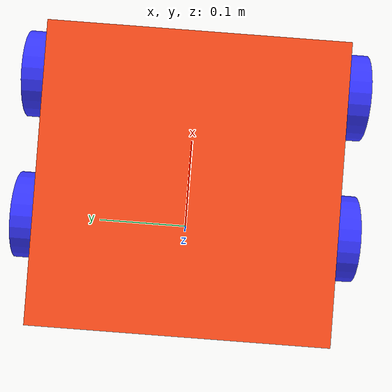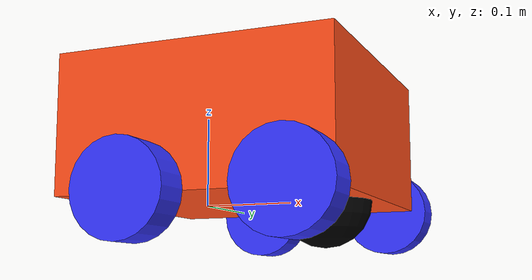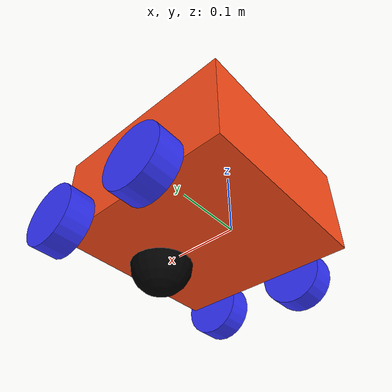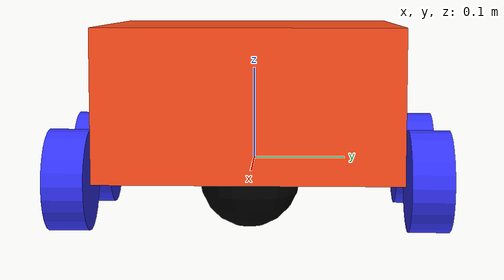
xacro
<?xml version="1.0"?>
<robot xmlns:xacro="http://www.ros.org/wiki/xacro">

  <xacro:include filename="inertial_macros.xacro"/>

  <!-- Materials -->
  <material name="white">
    <color rgba="1 1 1 1"/>
  </material>

  <material name="orange">
    <color rgba="1 0.3 0.1 1"/>
  </material>

  <material name="blue">
    <color rgba="0.2 0.2 1 1"/>
  </material>

  <material name="black">
    <color rgba="0 0 0 1"/>
  </material>

  <material name="red">
    <color rgba="1 0 0 1"/>
  </material>

  <!-- BASE LINK -->
  <link name="base_link">
  </link>

  <!-- CHASSIS LINK -->
  <joint name="chassis_joint" type="fixed">
    <parent link="base_link"/>
    <child link="chassis"/>
    <origin xyz="-0.1 0 0"/>
  </joint>

  <link name="chassis">
    <visual>
      <origin xyz="0.15 0 0.075"/>
      <geometry>
        <box size="0.3 0.3 0.15"/>
      </geometry>
      <material name="orange"/>
    </visual>
    <collision>
      <origin xyz="0.15 0 0.075"/>
      <geometry>
        <box size="0.3 0.3 0.15"/>
      </geometry>
    </collision>
    <xacro:inertial_box mass="0.5" x="0.3" y="0.3" z="0.15">
      <origin xyz="0.15 0 0.075" rpy="0 0 0"/>
    </xacro:inertial_box>
  </link>

  <!-- LEFT FRONT WHEEL LINK -->
  <joint name="left_front_wheel_joint" type="continuous">
    <parent link="base_link"/>
    <child link="left_front_wheel"/>
    <origin xyz="0.0 0.175 0" rpy="-${pi/2} 0 0"/>
    <axis xyz="0 0 1"/>
  </joint>

  <link name="left_front_wheel">
    <visual>
      <geometry>
        <cylinder radius="0.05" length="0.04"/>
      </geometry>
      <material name="blue"/>
    </visual>
    <collision>
      <geometry>
        <cylinder radius="0.05" length="0.04"/>
      </geometry>
    </collision>
    <xacro:inertial_cylinder mass="0.1" length="0.04" radius="0.05">
      <origin xyz="0 0 0" rpy="0 0 0"/>
    </xacro:inertial_cylinder>
  </link>

  <!-- RIGHT FRONT WHEEL LINK -->
  <joint name="right_front_wheel_joint" type="continuous">
    <parent link="base_link"/>
    <child link="right_front_wheel"/>
    <origin xyz="0.0 -0.175 0" rpy="${pi/2} 0 0"/>
    <axis xyz="0 0 -1"/>
  </joint>

  <link name="right_front_wheel">
    <visual>
      <geometry>
        <cylinder radius="0.05" length="0.04"/>
      </geometry>
      <material name="blue"/>
    </visual>
    <collision>
      <geometry>
        <cylinder radius="0.05" length="0.04"/>
      </geometry>
    </collision>
    <xacro:inertial_cylinder mass="0.1" length="0.04" radius="0.05">
      <origin xyz="0 0 0" rpy="0 0 0"/>
    </xacro:inertial_cylinder>
  </link>

  <!-- LEFT REAR WHEEL LINK -->
  <joint name="left_rear_wheel_joint" type="continuous">
    <parent link="base_link"/>
    <child link="left_rear_wheel"/>
    <origin xyz="0.165 0.175 0" rpy="-${pi/2} 0 0"/>
    <axis xyz="0 0 1"/>
  </joint>

  <link name="left_rear_wheel">
    <visual>
      <geometry>
        <cylinder radius="0.05" length="0.04"/>
      </geometry>
      <material name="blue"/>
    </visual>
    <collision>
      <geometry>
        <cylinder radius="0.05" length="0.04"/>
      </geometry>
    </collision>
    <xacro:inertial_cylinder mass="0.1" length="0.04" radius="0.05">
      <origin xyz="0 0 0" rpy="0 0 0"/>
    </xacro:inertial_cylinder>
  </link>

  <!-- RIGHT REAR WHEEL LINK -->
  <joint name="right_rear_wheel_joint" type="continuous">
    <parent link="base_link"/>
    <child link="right_rear_wheel"/>
    <origin xyz="0.165 -0.175 0" rpy="${pi/2} 0 0"/>
    <axis xyz="0 0 -1"/>
  </joint>

  <link name="right_rear_wheel">
    <visual>
      <geometry>
        <cylinder radius="0.05" length="0.04"/>
      </geometry>
      <material name="blue"/>
    </visual>
    <collision>
      <geometry>
        <cylinder radius="0.05" length="0.04"/>
      </geometry>
    </collision>
    <xacro:inertial_cylinder mass="0.1" length="0.04" radius="0.05">
      <origin xyz="0 0 0" rpy="0 0 0"/>
    </xacro:inertial_cylinder>
  </link>

  <!-- CASTER WHEEL LINK -->
  <joint name="caster_wheel_joint" type="fixed">
    <parent link="chassis"/>
    <child link="caster_wheel"/>
    <origin xyz="0.24 0 0"/>
  </joint>

  <link name="caster_wheel">
    <visual>
      <geometry>
        <sphere radius="0.05"/>
      </geometry>
      <material name="black"/>
    </visual>
    <collision>
      <geometry>
        <sphere radius="0.05"/>
      </geometry>
    </collision>
    <xacro:inertial_sphere mass="0.1" radius="0.05">
      <origin xyz="0 0 0" rpy="0 0 0"/>
    </xacro:inertial_sphere>
  </link>

</robot>
